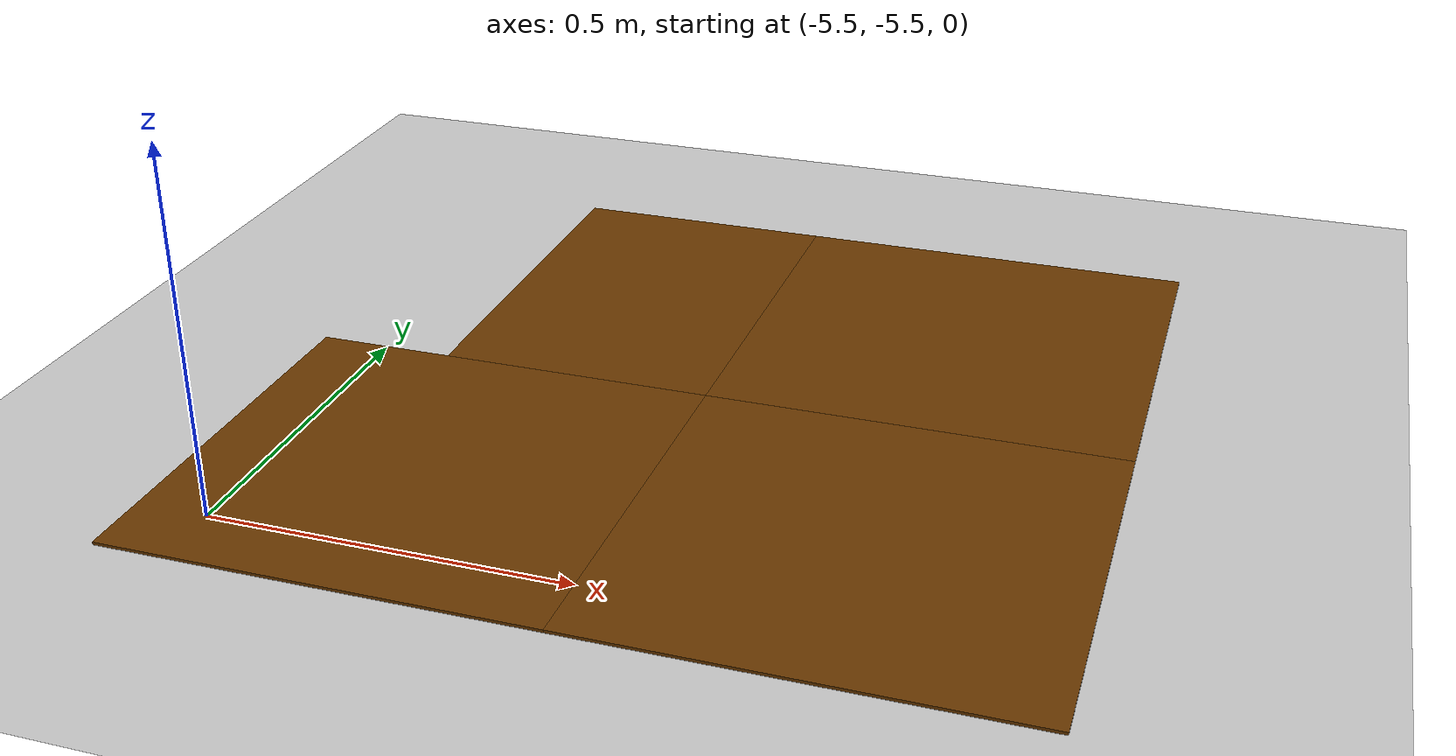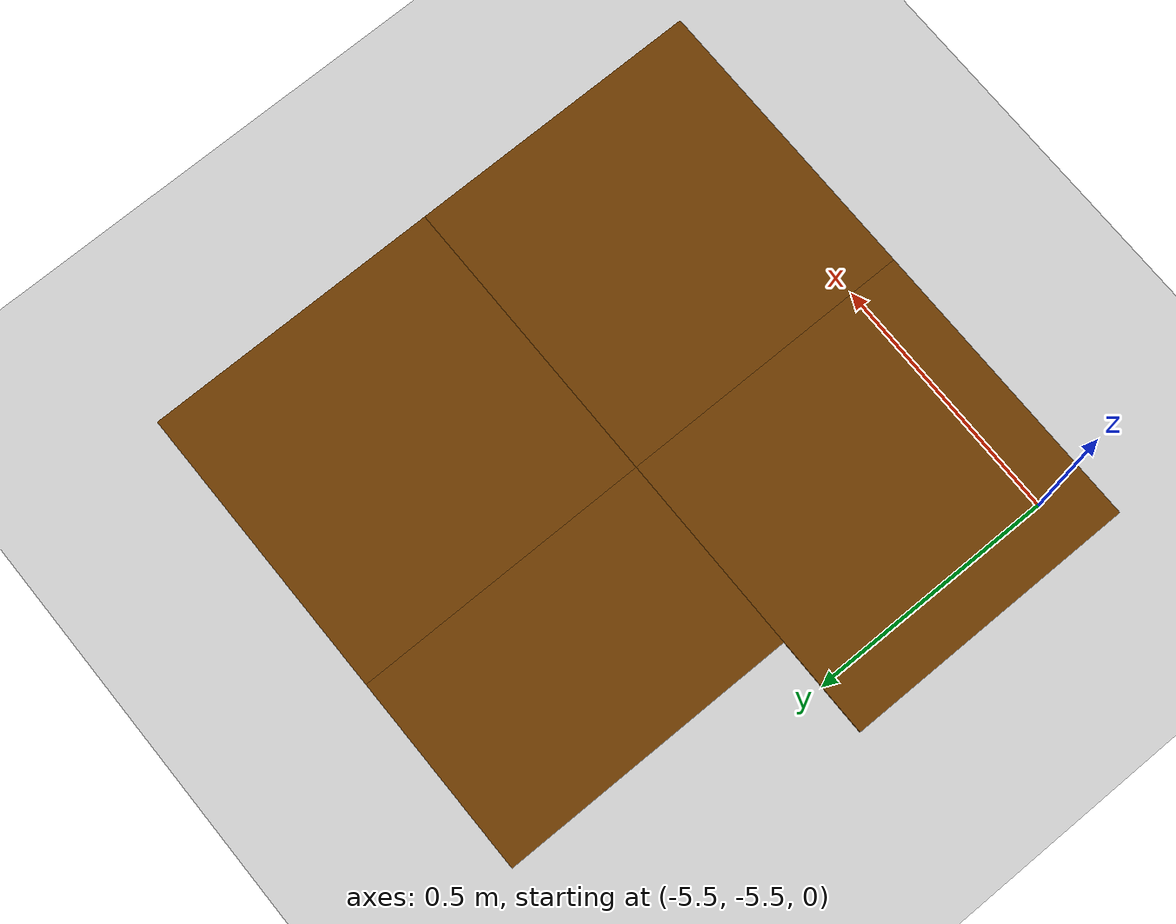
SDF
<?xml version="1.0" ?>
<sdf version="1.5">
    <world name="default">

        <physics type="ode">
        <max_step_size>0.0002</max_step_size>
        <real_time_factor>1</real_time_factor>
        <real_time_update_rate>5000</real_time_update_rate>
        <gravity>0 0 -9.81</gravity>
            <ode>
                <solver>
                <type>quick</type>
                <iters>50</iters>
                <sor>1.3</sor>
                </solver>
                <constraints>
                <cfm>0.0</cfm>
                <erp>0.2</erp>
                <contact_max_correcting_vel>10.0</contact_max_correcting_vel>
                <contact_surface_layer>0.001</contact_surface_layer>
                </constraints>
            </ode>
        </physics>

        <scene>
        <sky>
            <clouds>
                <speed>12</speed>
            </clouds>
        </sky>
        </scene>
        <!-- A global light source -->
        <include>
            <uri>model://sun</uri>
        </include>
        <!-- A ground plane -->
        <include>
            <uri>model://ground_plane</uri>
        </include>

        <model name="slip_plate">
            <static>true</static>
            <link name="slip_plate">
                <pose>-5.3 -5.3 0 0 0 0</pose>
                <collision name="slip_plate">
                    <geometry>
                        <box>
                            <size>0.6 0.6 0.005</size>
                        </box>
                    </geometry>
                    <surface>
                        <friction>
                        <ode>
                            <mu>1.35</mu>
                            <mu2>1.35</mu2>
                        </ode>
                        </friction>
                    </surface>
                </collision>
                <visual name="static_slip_visual">
                    <geometry>
                        <box>
                            <size>0.6 0.6 0.005</size>
                        </box>
                    </geometry>
                    <material>
                        <ambient>0.2 0.2 0.2 1.0</ambient>
                        <diffuse>.421 0.225 0.0 1.0</diffuse>
                    </material>
                </visual>
            </link>
        </model>

        <model name="normal_plate_rl">
            <static>true</static>
            <link name="normal_plate_rl">
                <pose>-5.2 -4.7 0 0 0 0</pose>
                <collision name="normal_plate_rl">
                    <geometry>
                        <box>
                            <size>0.4 0.6 0.005</size>
                        </box>
                    </geometry>
                    <surface>
                        <friction>
                        <ode>
                            <mu>01.35</mu>
                            <mu2>01.35</mu2>
                        </ode>
                        </friction>
                    </surface>
                </collision>
                <visual name="static_normal_plate_rl_visual">
                    <geometry>
                        <box>
                            <size>0.4 0.6 0.005</size>
                        </box>
                    </geometry>
                    <material>
                        <ambient>0.2 0.2 0.2 1.0</ambient>
                        <diffuse>.421 0.225 0.0 1.0</diffuse>
                    </material>
                </visual>
            </link>
        </model>

        <model name="normal_plate_fr">
            <static>true</static>
            <link name="normal_plate_fr">
                <pose>-4.7 -5.3 0 0 0 0</pose>
                <collision name="normal_plate_fr">
                    <geometry>
                        <box>
                            <size>0.6 0.6 0.005</size>
                        </box>
                    </geometry>
                    <surface>
                        <friction>
                        <ode>
                            <mu>01.35</mu>
                            <mu2>01.35</mu2>
                        </ode>
                        </friction>
                    </surface>
                </collision>
                <visual name="static_normal_plate_fr_visual">
                    <geometry>
                        <box>
                            <size>0.6 0.6 0.005</size>
                        </box>
                    </geometry>
                    <material>
                        <ambient>0.2 0.2 0.2 1.0</ambient>
                        <diffuse>.421 0.225 0.0 1.0</diffuse>
                    </material>
                </visual>
            </link>
        </model>

        <model name="normal_plate_fl">
            <static>true</static>
            <link name="normal_plate_fl">
                <pose>-4.7 -4.7 0 0 0 0</pose>
                <collision name="normal_plate_fl">
                    <geometry>
                        <box>
                            <size>0.6 0.6 0.005</size>
                        </box>
                    </geometry>
                    <surface>
                        <friction>
                        <ode>
                            <mu>01.35</mu>
                            <mu2>01.35</mu2>
                        </ode>
                        </friction>
                    </surface>
                </collision>
                <visual name="static_normal_plate_fl_visual">
                    <geometry>
                        <box>
                            <size>0.6 0.6 0.005</size>
                        </box>
                    </geometry>
                    <material>
                        <ambient>0.2 0.2 0.2 1.0</ambient>
                        <diffuse>.421 0.225 0.0 1.0</diffuse>
                    </material>
                </visual>
            </link>
        </model>

    </world>

</sdf>
